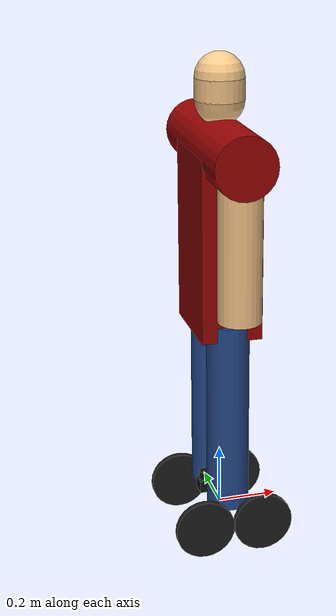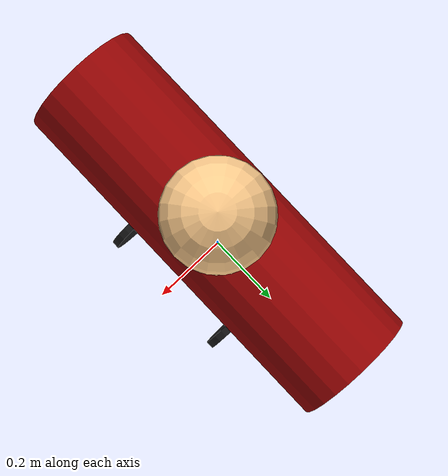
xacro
<?xml version="1.0"?>
<robot name="sf11"
	xmlns:controller="http://playerstage.sourceforge.net/gazebo/xmlschema/#controller"
	xmlns:interface="http://playerstage.sourceforge.net/gazebo/xmlschema/#interface"
	xmlns:sensor="http://playerstage.sourceforge.net/gazebo/xmlschema/#sensor"
	xmlns:xacro="http://ros.org/wiki/xacro">

	<xacro:include filename="$(find sf_robot_description)/config/hokuyo_laser.xacro" />

	<link name="base_link">
	</link>

	<xacro:macro name="wheel" params="name parent reflect *origin">
		<link name="${parent}_${name}_wheel">
			<inertial>
				<mass value="0.5" />
				<origin xyz="0 0 0" rpy="${-3.1415927/2} 0 0" />
				<inertia ixx="0.012411765597" ixy="0" ixz="0" iyy="0.015218160428"
					iyz="0" izz="0.011763977943" />
			</inertial>
			<visual name="${parent}_${name}_wheel_visual">
				<origin xyz="0 0 0" rpy="${-3.1415927/2} 0 0" />
				<geometry name="${parent}_${name}_wheel_geom">
					<cylinder radius="0.1" length="0.02" />
				</geometry>
				<material name="WheelBlack">
					<color rgba="0.117 0.117 0.117 1" />
				</material>
			</visual>
			<collision>
				<origin xyz="0 0 0" rpy="${-3.1415927/2} 0 0" />
				<geometry name="${parent}_${name}_wheel_geom">
					<cylinder radius="0.1" length="0.02" />
				</geometry>
			</collision>
		</link>
		<gazebo reference="${parent}_${name}_wheel">
			<material value="Gazebo/Black" />
		</gazebo>

		<joint name="${parent}_${name}_wheel_joint" type="continuous">
			<axis xyz="0 1 0" />
			<anchor xyz="0 0 0" />
			<limit effort="100" velocity="100" />
			<dynamics damping="0.0" friction="0.0" />
			<insert_block name="origin" />
			<parent link="${parent}_link" />
			<child link="${parent}_${name}_wheel" />
		</joint>

		<transmission name="${parent}_${name}_wheel_trans">
			<type>transmission_interface/SimpleTransmission</type>
			<joint name="${parent}_${name}_wheel_joint">
				<hardwareInterface>EffortJointInterface</hardwareInterface>
			</joint>
			<actuator name="${parent}_${name}_wheel_motor">
				<hardwareInterface>EffortJointInterface</hardwareInterface>
				<mechanicalReduction>${reflect * (624/35) * (80/19)}</mechanicalReduction>
			</actuator>
		</transmission>
	</xacro:macro>

	<xacro:macro name="torso" params="name parent *origin">
		<joint name="${name}_joint" type="fixed">
			<insert_block name="origin" />
			<parent link="${parent}_link" />
			<child link="${name}_link" />
		</joint>
		<link name="${name}_link">
			<visual>
				<origin xyz="0 0 0.3" rpy="0 0 0" />
				<geometry>
					<box size="0.2 0.3 0.6" />
				</geometry>
				<material name="shirt">
					<color rgba="0.611765 0.0156863 0.0156863 1.0" />
				</material>
			</visual>
			<collision>
				<origin xyz="0 0 0.3" rpy="0 0 0" />
				<geometry>
					<box size="0.2 0.3 0.6" />
				</geometry>
			</collision>
		</link>
		<joint name="${name}_shoulders_joint" type="fixed">
			<origin xyz="0 0 0.6" rpy="0 0 1.57079" />
			<parent link="${name}_link" />
			<child link="${name}_shoulders_link" />
		</joint>
		<link name="${name}_shoulders_link">
			<visual>
				<origin xyz="0 0 0" rpy="0 1.57079 0" />
				<geometry>
					<cylinder length="0.6" radius="0.1" />
				</geometry>
				<material name="shirt">
					<color rgba="0.611765 0.0156863 0.0156863 1.0" />
				</material>
			</visual>
			<collision>
				<origin xyz="0 0 0" rpy="0 1.57079 0" />
				<geometry>
					<cylinder length="0.6" radius="0.1" />
				</geometry>
			</collision>
		</link>
		<gazebo reference="${name}_link">
			<material>Gazebo/Red</material>
		</gazebo>
		<xacro:arm name="${name}_arm_right" parent="${name}_shoulders">
			<origin rpy="0 0 0" xyz="0.23 0 -0.05" />
		</xacro:arm>
		<xacro:arm name="${name}_arm_left" parent="${name}_shoulders">
			<origin rpy="0 0 0" xyz="-0.23 0 -0.05" />
		</xacro:arm>
		<xacro:head name="${name}_head" parent="${name}_shoulders">
			<origin rpy="0 0 0" xyz="0 0 0.07" />
		</xacro:head>
	</xacro:macro>

	<xacro:macro name="head" params="name parent *origin">
		<joint name="${name}_bottom_joint" type="fixed">
			<insert_block name="origin" />
			<parent link="${parent}_link" />
			<child link="${name}_link" />
		</joint>
		<link name="${name}_link">
		</link>
		<joint name="${name}_joint" type="fixed">
			<origin xyz="0 0 0.08" rpy="0 0 0" />
			<parent link="${name}_link" />
			<child link="${name}_bottom_link" />
		</joint>
		<link name="${name}_bottom_link">
			<visual>
				<geometry>
					<sphere radius="0.08" />
				</geometry>
				<material name="skin">
					<color rgba="1 0.803922 0.552941 1.0" />
				</material>
			</visual>
			<collision>
				<geometry>
					<sphere radius="0.08" />
				</geometry>
			</collision>
		</link>
		<joint name="${name}_middle_joint" type="fixed">
			<origin xyz="0 0 0.035" rpy="0 0 0" />
			<parent link="${name}_bottom_link" />
			<child link="${name}_middle_link" />
		</joint>
		<link name="${name}_middle_link">
			<visual>
				<geometry>
					<cylinder length="0.07" radius="0.08" />
				</geometry>
				<material name="skin">
					<color rgba="1 0.803922 0.552941 1.0" />
				</material>
			</visual>
			<collision>
				<geometry>
					<cylinder length="0.07" radius="0.08" />
				</geometry>
			</collision>
		</link>
		<joint name="${name}_top_joint" type="fixed">
			<origin xyz="0 0 0.15" rpy="0 0 0" />
			<parent link="${name}_link" />
			<child link="${name}_top_link" />
		</joint>
		<link name="${name}_top_link">
			<visual>
				<geometry>
					<sphere radius="0.08" />
				</geometry>
				<material name="skin">
					<color rgba="1 0.803922 0.552941 1.0" />
				</material>
			</visual>
			<collision>
				<geometry>
					<sphere radius="0.08" />
				</geometry>
			</collision>
		</link>
		<gazebo reference="${name}_bottom_link">
			<material>Gazebo/Grey</material>
		</gazebo>
		<gazebo reference="${name}_middle_link">
			<material>Gazebo/SmileyHappy</material>
		</gazebo>
		<gazebo reference="${name}_top_link">
			<material>Gazebo/Grey</material>
		</gazebo>
	</xacro:macro>

	<xacro:macro name="arm" params="name parent *origin">
		<joint name="${name}_joint" type="fixed">
			<insert_block name="origin" />
			<parent link="${parent}_link" />
			<child link="${name}_link" />
		</joint>
		<link name="${name}_link">
			<visual>
				<origin xyz="0 0 -0.225" rpy="0 0 0" />
				<geometry>
					<cylinder length="0.45" radius="0.07" />
				</geometry>
				<material name="skin">
					<color rgba="1 0.803922 0.552941 1.0" />
				</material>
			</visual>
			<collision>
				<origin xyz="0 0 -0.225" rpy="0 0 0" />
				<geometry>
					<cylinder length="0.45" radius="0.07" />
				</geometry>
			</collision>
		</link>
		<gazebo reference="${name}_link">
			<material>Gazebo/Grey</material>
		</gazebo>
	</xacro:macro>

	<xacro:macro name="leg" params="name parent *origin">
		<joint name="${name}_joint" type="fixed">
			<insert_block name="origin" />
			<parent link="${parent}_link" />
			<child link="${name}_link" />
		</joint>
		<link name="${name}_link">
			<visual>
				<origin xyz="0 0 0.375" rpy="0 0 0" />
				<geometry>
					<cylinder length="0.65" radius="0.07" />
				</geometry>
				<material name="blue">
					<color rgba="0.14902 0.294118 0.560784 1.0" />
				</material>
			</visual>
			<collision>
				<origin xyz="0 0 0.375" rpy="0 0 0" />
				<geometry>
					<cylinder length="0.65" radius="0.07" />
				</geometry>
			</collision>
		</link>
		<gazebo reference="${name}_link">
			<material>Gazebo/Blue</material>
		</gazebo>
	</xacro:macro>

	<xacro:hokuyo_04lx_laser_ug01 name="base_laser_front"
		parent="base" ros_topic="scan_front" update_rate="10" min_angle="-2.094"
		max_angle="2.094">
		<origin rpy="0 0 0" xyz="0.05 0.0 0.05" />
	</xacro:hokuyo_04lx_laser_ug01>
	<xacro:hokuyo_04lx_laser_ug01 name="base_laser_back"
		parent="base" ros_topic="scan_back" update_rate="10" min_angle="-2.094"
		max_angle="2.094">
		<origin rpy="0 0 3.14159" xyz="-0.05 0.0 0.05" />
	</xacro:hokuyo_04lx_laser_ug01>

	<xacro:torso name="torso" parent="base">
		<origin rpy="0 0 0" xyz="0 0 0.65" />
	</xacro:torso>
	<xacro:leg name="leg_right" parent="base">
		<origin rpy="0 0 0" xyz="0 -0.1 0" />
	</xacro:leg>
	<xacro:leg name="leg_left" parent="base">
		<origin rpy="0 0 0" xyz="0 0.1 0" />
	</xacro:leg>

	<xacro:wheel name="front_right" parent="base" reflect="1">
		<origin rpy="0 0 0" xyz=" -0.1 0.18 0" />
	</xacro:wheel>
	<xacro:wheel name="rear_right" parent="base" reflect="1">
		<origin rpy="0 0 0" xyz="0.1 0.18 0" />
	</xacro:wheel>
	<xacro:wheel name="front_left" parent="base" reflect="-1">
		<origin rpy="0 0 0" xyz="-0.1 -0.18 0" />
	</xacro:wheel>
	<xacro:wheel name="rear_left" parent="base" reflect="-1">
		<origin rpy="0 0 0" xyz=" 0.1 -0.18 0" />
	</xacro:wheel>

	<gazebo>
		<plugin name="skid_steer_drive_controller" filename="libgazebo_ros_skid_steer_drive.so">
			<updateRate>100.0</updateRate>
			<robotNamespace>/</robotNamespace>
			<leftFrontJoint>base_front_left_wheel_joint</leftFrontJoint>
			<rightFrontJoint>base_front_right_wheel_joint</rightFrontJoint>
			<leftRearJoint>base_back_left_wheel_joint</leftRearJoint>
			<rightRearJoint>base_back_right_wheel_joint</rightRearJoint>
			<wheelSeparation>0.4</wheelSeparation>
			<wheelDiameter>0.215</wheelDiameter>
			<robotBaseFrame>base_link</robotBaseFrame>
			<torque>20</torque>
			<topicName>cmd_vel</topicName>
			<broadcastTF>false</broadcastTF>
		</plugin>
	</gazebo>
</robot>

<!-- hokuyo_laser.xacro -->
<robot xmlns:xacro="http://ros.org/wiki/xacro">
	<xacro:macro name="hokuyo_04lx_laser_ug01"
		params="name parent *origin ros_topic update_rate min_angle max_angle">

		<joint name="${name}_joint" type="fixed">
			<insert_block name="origin" />
			<parent link="${parent}_link" />
			<child link="${name}_link" />
		</joint>
		<link name="${name}_link">
			<inertial>
				<mass value="0.01" />
				<origin xyz="0 0 0.0205" rpy="0 0 0" />
				<inertia ixx="0.001" ixy="0.0" ixz="0.0" iyy="0.001" iyz="0.0"
					izz="0.001" />
			</inertial>
			<visual>
				<origin xyz="0 0 0.0205" rpy="0 0 0" />
				<geometry>
					<box size="0.05 0.05 0.041" />
				</geometry>
				<material name="black">
					<color rgba="0.07 0.07 0.07 1.0" />
				</material>
			</visual>
			<collision>
				<origin xyz="0 0 0.0205" rpy="0 0 0" />
				<geometry>
					<box size="0.05 0.05 0.041" />
				</geometry>
			</collision>
		</link>
		<gazebo reference="${name}_link">
			<material>Gazebo/FlatBlack</material>
		</gazebo>

		<joint name="${name}_scan_joint" type="fixed">
			<origin xyz="0 0 0.041" rpy="0 0 0" />
			<parent link="${name}_link" />
			<child link="${ros_topic}" />
		</joint>
		<link name="${ros_topic}" type="laser">
			<inertial>
				<mass value="0.01" />
				<origin xyz="0 0 0.0145" rpy="0 0 0" />
				<inertia ixx="0.001" ixy="0.0" ixz="0.0" iyy="0.001" iyz="0.0"
					izz="0.001" />
			</inertial>
			<visual>
				<origin xyz="0 0 0.0145" rpy="0 0 0" />
				<geometry>
					<cylinder length="0.029" radius="0.021" />
				</geometry>
				<material name="black">
					<color rgba="0.07 0.07 0.07 1.0" />
				</material>
			</visual>
			<collision>
				<origin xyz="0 0 0.0145" rpy="0 0 0" />
				<geometry>
					<cylinder length="0.029" radius="0.021" />
				</geometry>
			</collision>
		</link>

		<!-- Gazebo Config -->
		<gazebo reference="${name}_link">
			<sensor type="gpu_ray" name="${name}">
				<pose>0 0 0 0 0 0</pose>
				<visualize>false</visualize>
				<update_rate>${update_rate}</update_rate>
				<ray>
					<scan>
						<horizontal>
							<samples>640</samples>
							<resolution>1</resolution>
							<min_angle>${min_angle}</min_angle>
							<max_angle>${max_angle}</max_angle>
						</horizontal>
					</scan>
					<range>
						<min>0.02</min>
						<max>5.6</max>
						<resolution>0.06</resolution>
					</range>
				</ray>
				<plugin name="gazebo_ros_${name}_controller" filename="libgazebo_ros_gpu_laser.so">
					<gaussianNoise>0.005</gaussianNoise>
					<hokuyoMinIntensity>101</hokuyoMinIntensity>
					<alwaysOn>true</alwaysOn>
					<topicName>${ros_topic}</topicName>
					<frameName>${name}_link</frameName>
				</plugin>
			</sensor>
		</gazebo>
	</xacro:macro>
</robot>
